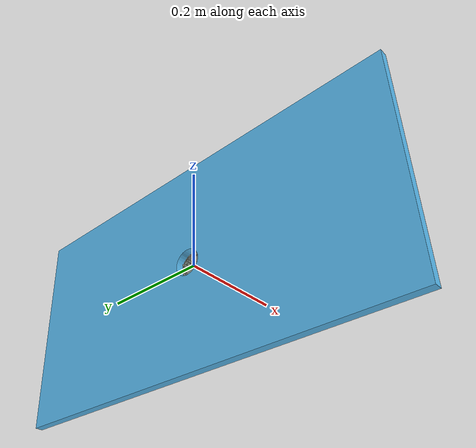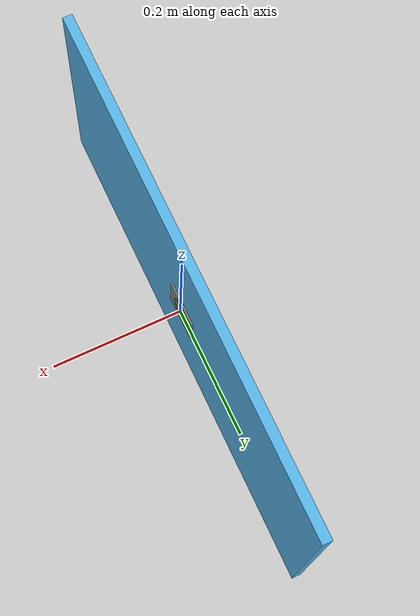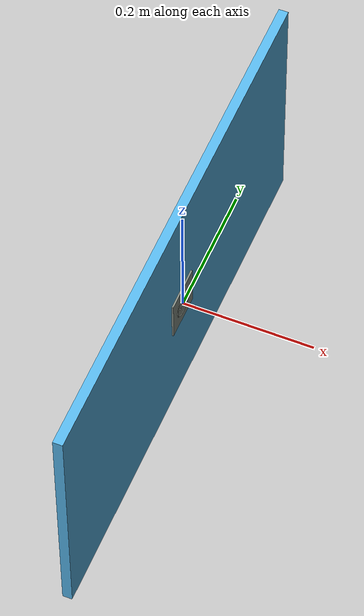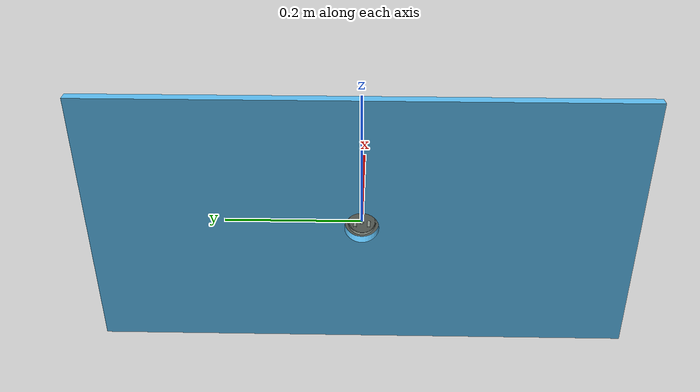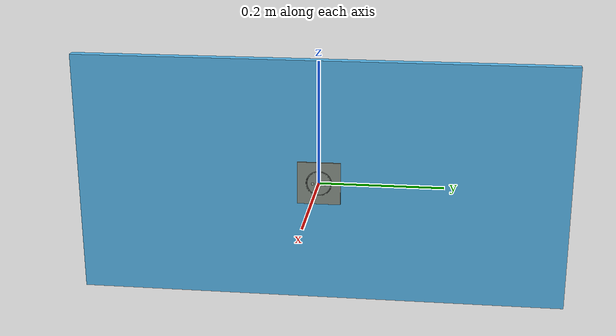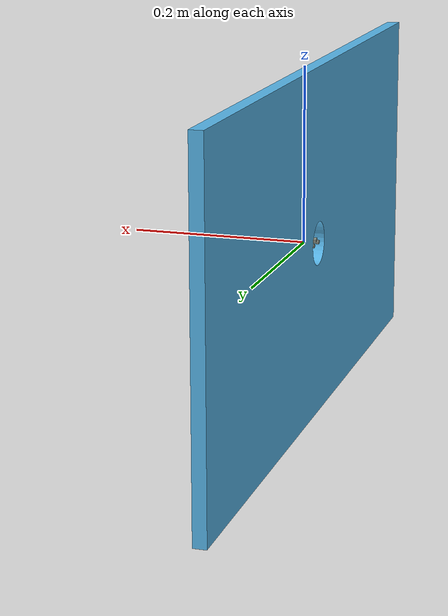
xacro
<?xml version="1.0"?>
<robot name="peg_wall" xmlns:xacro="http://www.ros.org/wiki/xacro">

<xacro:property name="r_l"  		value="0.8"    />
<xacro:property name="r_h"  		value="0.4"   />
<xacro:property name="r_w"  		value="0.02"   />
<xacro:property name="M_PI"  		value="3.14159265359"   />

<xacro:property name="socket_t" 	value = "socket_one"	/>

<xacro:property name="use_socket_one" 	value 	= "true"/>
<xacro:property name="use_socket_two" 	value 	= "false"/>
<xacro:property name="use_socket_three" value 	= "false"/>

<xacro:macro name="box_I" params="m w h d">
    <inertia ixx="${1/12 * m * (d*d  + h * h)}" ixy="0.0" ixz="0.0" iyy="${1/12 * m * (h * h + w * w)}" iyz="0.0" izz="${1/12 * m * (w * w + d * d)}" />
</xacro:macro>

<link name="link_socket">
	<visual>
		<origin xyz="0 0 0" rpy="0 0 0"/>
		<geometry>
   			<mesh filename="package://objects/meshes/${socket_t}/${socket_t}.dae"/>
		</geometry>
        </visual>

	<inertial>
		<origin xyz="0 0 0" rpy="0 0 0"/>
		<mass value="1"/>
		<xacro:box_I m="1.0" w="${r_w}" h="${r_h}" d="${r_l}"/>
	</inertial>

	<collision>
		<origin xyz="0 0 0" rpy="0 0 0"/>
		<geometry>
   			<mesh filename="package://objects/meshes/${socket_t}/${socket_t}.dae"/>
		</geometry>
  	</collision>
</link>

<joint name="joint_fixed_socket" type="fixed">

	<xacro:if value="${use_socket_one}">
		<origin xyz="${-0.01} 0 0" rpy="0 0 ${-M_PI/2}"/>
	</xacro:if>
	<xacro:if value="${use_socket_two}">
		<origin xyz="${-0.0025} 0 0" rpy="0 0 ${-M_PI/2}"/>
	</xacro:if>
	<xacro:if value="${use_socket_three}">
		<origin xyz="${-0.0025} 0 0" rpy="0 0 ${-M_PI/2}"/>
	</xacro:if>

	<parent link="link_socket"/>
	<child link="link_wall"/>
</joint>

<link name="link_wall">

	<visual>
		<origin xyz="0 0 0" rpy="0 0 0"/>
		<geometry>
   			<mesh filename="package://objects/meshes/wall.dae"/>
		</geometry>
        </visual>

	<inertial>
		<origin xyz="0 0 0" rpy="0 0 0"/>
		<mass value="1"/>
		<xacro:box_I m="1.0" w="${r_w}" h="${r_h}" d="${r_l}"/>
	</inertial>

	<collision>
		<origin xyz="0 0 0" rpy="0 0 0"/>
		<geometry>
			<box size="${r_l} ${r_h} ${r_w}"/>
		</geometry>
  	</collision>

</link>

</robot>
